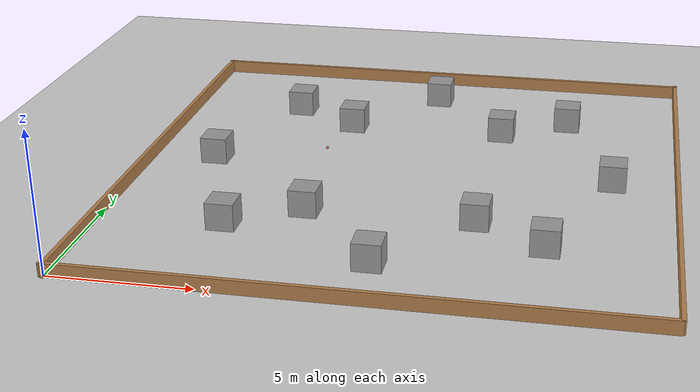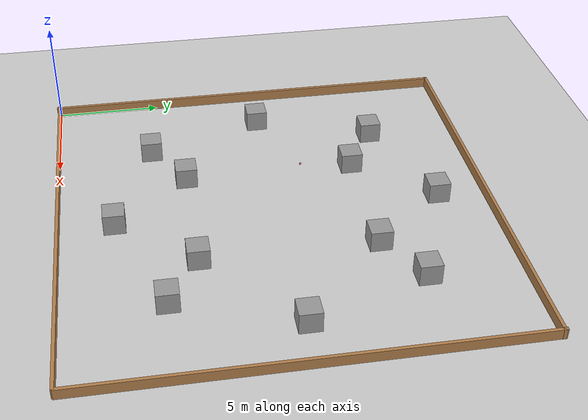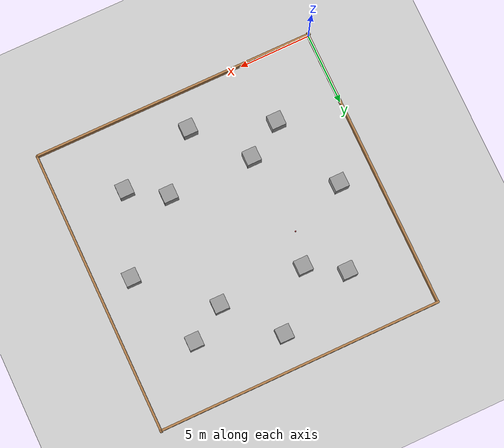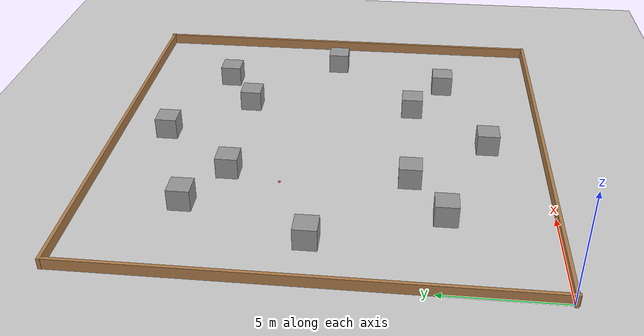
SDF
<sdf version="1.6">
 <world name="default">
  <light name="sun" type="directional">
   <pose>0 0 10 0 -0 0</pose>
   <diffuse>0.8 0.8 0.8 1</diffuse>
   <specular>0.1 0.1 0.1 1</specular>
   <attenuation>
    <range>1000</range>
    <constant>0.9</constant>
    <linear>0.01</linear>
    <quadratic>0.001</quadratic>
   </attenuation>
   <direction>-0.5 0.5 -1</direction>
  </light>
  <model name="ground_plane">
   <static>1</static>
   <link name="link">
    <collision name="collision">
     <geometry><plane><normal>0 0 1</normal><size>200 200</size></plane></geometry>
     <surface><friction><ode><mu>100</mu><mu2>50</mu2></ode></friction></surface>
    </collision>
    <visual name="visual">
     <cast_shadows>0</cast_shadows>
     <geometry><plane><normal>0 0 1</normal><size>200 200</size></plane></geometry>
     <material>
      <script><uri>file://media/materials/scripts/gazebo.material</uri><name>Gazebo/Grey</name></script>
     </material>
    </visual>
   </link>
  </model>
  <physics name="default_physics" default="0" type="ode">
   <real_time_update_rate>0</real_time_update_rate>
   <max_step_size>0.001</max_step_size>
   <real_time_factor>1000</real_time_factor>
   <ode>
    <solver>
     <type>quick</type>
     <iters>150</iters>
     <precon_iters>0</precon_iters>
     <sor>1.4</sor>
     <use_dynamic_moi_rescaling>1</use_dynamic_moi_rescaling>
    </solver>
    <constraints>
     <cfm>1e-05</cfm>
     <erp>0.2</erp>
     <contact_max_correcting_vel>2000</contact_max_correcting_vel>
     <contact_surface_layer>0.01</contact_surface_layer>
    </constraints>
   </ode>
  </physics>
  <scene><ambient>0.4 0.4 0.4 1</ambient><background>0.7 0.7 0.7 1</background><shadows>1</shadows></scene>
  <gravity>0 0 -9.8</gravity>
  <magnetic_field>6e-06 2.3e-05 -4.2e-05</magnetic_field>
  <atmosphere type="adiabatic"/>
  <spherical_coordinates>
   <surface_model>EARTH_WGS84</surface_model>
   <latitude_deg>0</latitude_deg>
   <longitude_deg>0</longitude_deg>
   <elevation>0</elevation>
   <heading_deg>0</heading_deg>
  </spherical_coordinates>
  <model name="unit_sphere_3_0_0_0">
   <link name="link">
    <inertial>
     <mass>1</mass>
     <inertia><ixx>0.1</ixx><ixy>0</ixy><ixz>0</ixz><iyy>0.1</iyy><iyz>0</iyz><izz>0.1</izz></inertia>
    </inertial>
    <visual name="visual">
     <geometry><sphere><radius>0.05</radius></sphere></geometry>
     <material>
      <script><name>Gazebo/Grey</name><uri>file://media/materials/scripts/gazebo.material</uri></script>
      <ambient>0.9 0.3 0.3 1</ambient>
      <diffuse>0.7 0.7 0.7 1</diffuse>
      <specular>0.01 0.01 0.01 1</specular>
      <emissive>0 0 0 1</emissive>
      <shader type="vertex"><normal_map>__default__</normal_map></shader>
     </material>
    </visual>
    <collision name="collision">
     <geometry><sphere><radius>0.05</radius></sphere></geometry>
     <surface>
      <friction>
       <ode><mu>1</mu><mu2>1</mu2><fdir1>0 0 0</fdir1><slip1>0</slip1><slip2>0</slip2></ode>
       <torsional>
        <coefficient>1</coefficient>
        <patch_radius>0</patch_radius>
        <surface_radius>0</surface_radius>
        <use_patch_radius>1</use_patch_radius>
        <ode><slip>0</slip></ode>
       </torsional>
      </friction>
      <bounce><restitution_coefficient>0</restitution_coefficient><threshold>1e+06</threshold></bounce>
      <contact>
       <collide_without_contact>0</collide_without_contact>
       <collide_without_contact_bitmask>1</collide_without_contact_bitmask>
       <collide_bitmask>1</collide_bitmask>
       <ode>
        <soft_cfm>0</soft_cfm>
        <soft_erp>0.2</soft_erp>
        <kp>1e+13</kp>
        <kd>1</kd>
        <max_vel>0.01</max_vel>
        <min_depth>0</min_depth>
       </ode>
       <bullet>
        <split_impulse>1</split_impulse>
        <split_impulse_penetration_threshold>-0.01</split_impulse_penetration_threshold>
        <soft_cfm>0</soft_cfm>
        <soft_erp>0.2</soft_erp>
        <kp>1e+13</kp>
        <kd>1</kd>
       </bullet>
      </contact>
     </surface>
    </collision>
   </link>
   <static>0</static>
   <pose>6.42035 11.6553 0.05 -3.04754 -1.19068 2.42402</pose>
  </model>
  <model name="unit_box_12">
   <pose>17.5 10 0.5 0 -0 3.14159</pose>
   <link name="link">
    <inertial>
     <mass>1</mass>
     <inertia>
      <ixx>0.166667</ixx>
      <ixy>0</ixy>
      <ixz>0</ixz>
      <iyy>0.166667</iyy>
      <iyz>0</iyz>
      <izz>0.166667</izz>
     </inertia>
    </inertial>
    <collision name="collision"><geometry><box><size>1 1 1</size></box></geometry></collision>
    <visual name="visual">
     <geometry><box><size>1 1 1</size></box></geometry>
     <material>
      <script><name>Gazebo/Grey</name><uri>file://media/materials/scripts/gazebo.material</uri></script>
     </material>
    </visual>
   </link>
  </model>
  <model name="unit_box_13">
   <pose>2.5 10 0.5 0 -0 3.14159</pose>
   <link name="link">
    <inertial>
     <mass>1</mass>
     <inertia>
      <ixx>0.166667</ixx>
      <ixy>0</ixy>
      <ixz>0</ixz>
      <iyy>0.166667</iyy>
      <iyz>0</iyz>
      <izz>0.166667</izz>
     </inertia>
    </inertial>
    <collision name="collision"><geometry><box><size>1 1 1</size></box></geometry></collision>
    <visual name="visual">
     <geometry><box><size>1 1 1</size></box></geometry>
     <material>
      <script><name>Gazebo/Grey</name><uri>file://media/materials/scripts/gazebo.material</uri></script>
     </material>
    </visual>
   </link>
  </model>
  <model name="unit_box_14">
   <pose>10 17.5 0.5 0 -0 3.14159</pose>
   <link name="link">
    <inertial>
     <mass>1</mass>
     <inertia>
      <ixx>0.166667</ixx>
      <ixy>0</ixy>
      <ixz>0</ixz>
      <iyy>0.166667</iyy>
      <iyz>0</iyz>
      <izz>0.166667</izz>
     </inertia>
    </inertial>
    <collision name="collision"><geometry><box><size>1 1 1</size></box></geometry></collision>
    <visual name="visual">
     <geometry><box><size>1 1 1</size></box></geometry>
     <material>
      <script><name>Gazebo/Grey</name><uri>file://media/materials/scripts/gazebo.material</uri></script>
     </material>
    </visual>
   </link>
  </model>
  <model name="unit_box_15">
   <pose>10 2.5 0.5 0 -0 3.14159</pose>
   <link name="link">
    <inertial>
     <mass>1</mass>
     <inertia>
      <ixx>0.166667</ixx>
      <ixy>0</ixy>
      <ixz>0</ixz>
      <iyy>0.166667</iyy>
      <iyz>0</iyz>
      <izz>0.166667</izz>
     </inertia>
    </inertial>
    <collision name="collision"><geometry><box><size>1 1 1</size></box></geometry></collision>
    <visual name="visual">
     <geometry><box><size>1 1 1</size></box></geometry>
     <material>
      <script><name>Gazebo/Grey</name><uri>file://media/materials/scripts/gazebo.material</uri></script>
     </material>
    </visual>
   </link>
  </model>
  <model name="unit_box_16">
   <pose>15.5 15.5 0.5 0 -0 3.14159</pose>
   <link name="link">
    <inertial>
     <mass>1</mass>
     <inertia>
      <ixx>0.166667</ixx>
      <ixy>0</ixy>
      <ixz>0</ixz>
      <iyy>0.166667</iyy>
      <iyz>0</iyz>
      <izz>0.166667</izz>
     </inertia>
    </inertial>
    <collision name="collision"><geometry><box><size>1 1 1</size></box></geometry></collision>
    <visual name="visual">
     <geometry><box><size>1 1 1</size></box></geometry>
     <material>
      <script><name>Gazebo/Grey</name><uri>file://media/materials/scripts/gazebo.material</uri></script>
     </material>
    </visual>
   </link>
  </model>
  <model name="unit_box_17">
   <pose>4.5 15.5 0.5 0 -0 3.14159</pose>
   <link name="link">
    <inertial>
     <mass>1</mass>
     <inertia>
      <ixx>0.166667</ixx>
      <ixy>0</ixy>
      <ixz>0</ixz>
      <iyy>0.166667</iyy>
      <iyz>0</iyz>
      <izz>0.166667</izz>
     </inertia>
    </inertial>
    <collision name="collision"><geometry><box><size>1 1 1</size></box></geometry></collision>
    <visual name="visual">
     <geometry><box><size>1 1 1</size></box></geometry>
     <material>
      <script><name>Gazebo/Grey</name><uri>file://media/materials/scripts/gazebo.material</uri></script>
     </material>
    </visual>
   </link>
  </model>
  <model name="unit_box_18">
   <pose>15.5 4.5 0.5 0 -0 3.14159</pose>
   <link name="link">
    <inertial>
     <mass>1</mass>
     <inertia>
      <ixx>0.166667</ixx>
      <ixy>0</ixy>
      <ixz>0</ixz>
      <iyy>0.166667</iyy>
      <iyz>0</iyz>
      <izz>0.166667</izz>
     </inertia>
    </inertial>
    <collision name="collision"><geometry><box><size>1 1 1</size></box></geometry></collision>
    <visual name="visual">
     <geometry><box><size>1 1 1</size></box></geometry>
     <material>
      <script><name>Gazebo/Grey</name><uri>file://media/materials/scripts/gazebo.material</uri></script>
     </material>
    </visual>
   </link>
  </model>
  <model name="unit_box_19">
   <pose>4.5 4.5 0.5 0 -0 3.14159</pose>
   <link name="link">
    <inertial>
     <mass>1</mass>
     <inertia>
      <ixx>0.166667</ixx>
      <ixy>0</ixy>
      <ixz>0</ixz>
      <iyy>0.166667</iyy>
      <iyz>0</iyz>
      <izz>0.166667</izz>
     </inertia>
    </inertial>
    <collision name="collision"><geometry><box><size>1 1 1</size></box></geometry></collision>
    <visual name="visual">
     <geometry><box><size>1 1 1</size></box></geometry>
     <material>
      <script><name>Gazebo/Grey</name><uri>file://media/materials/scripts/gazebo.material</uri></script>
     </material>
    </visual>
   </link>
  </model>
  <model name="unit_box_20">
   <pose>13 6 0.5 0 -0 3.14159</pose>
   <link name="link">
    <inertial>
     <mass>1</mass>
     <inertia>
      <ixx>0.166667</ixx>
      <ixy>0</ixy>
      <ixz>0</ixz>
      <iyy>0.166667</iyy>
      <iyz>0</iyz>
      <izz>0.166667</izz>
     </inertia>
    </inertial>
    <collision name="collision"><geometry><box><size>1 1 1</size></box></geometry></collision>
    <visual name="visual">
     <geometry><box><size>1 1 1</size></box></geometry>
     <material>
      <script><name>Gazebo/Grey</name><uri>file://media/materials/scripts/gazebo.material</uri></script>
     </material>
    </visual>
   </link>
  </model>
  <model name="unit_box_21">
   <pose>7 6 0.5 0 -0 3.14159</pose>
   <link name="link">
    <inertial>
     <mass>1</mass>
     <inertia>
      <ixx>0.166667</ixx>
      <ixy>0</ixy>
      <ixz>0</ixz>
      <iyy>0.166667</iyy>
      <iyz>0</iyz>
      <izz>0.166667</izz>
     </inertia>
    </inertial>
    <collision name="collision"><geometry><box><size>1 1 1</size></box></geometry></collision>
    <visual name="visual">
     <geometry><box><size>1 1 1</size></box></geometry>
     <material>
      <script><name>Gazebo/Grey</name><uri>file://media/materials/scripts/gazebo.material</uri></script>
     </material>
    </visual>
   </link>
  </model>
  <model name="unit_box_22">
   <pose>7 14 0.5 0 -0 3.14159</pose>
   <link name="link">
    <inertial>
     <mass>1</mass>
     <inertia>
      <ixx>0.166667</ixx>
      <ixy>0</ixy>
      <ixz>0</ixz>
      <iyy>0.166667</iyy>
      <iyz>0</iyz>
      <izz>0.166667</izz>
     </inertia>
    </inertial>
    <collision name="collision"><geometry><box><size>1 1 1</size></box></geometry></collision>
    <visual name="visual">
     <geometry><box><size>1 1 1</size></box></geometry>
     <material>
      <script><name>Gazebo/Grey</name><uri>file://media/materials/scripts/gazebo.material</uri></script>
     </material>
    </visual>
   </link>
  </model>
  <model name="unit_box_23">
   <pose>13 14 0.5 0 -0 3.14159</pose>
   <link name="link">
    <inertial>
     <mass>1</mass>
     <inertia>
      <ixx>0.166667</ixx>
      <ixy>0</ixy>
      <ixz>0</ixz>
      <iyy>0.166667</iyy>
      <iyz>0</iyz>
      <izz>0.166667</izz>
     </inertia>
    </inertial>
    <collision name="collision"><geometry><box><size>1 1 1</size></box></geometry></collision>
    <visual name="visual">
     <geometry><box><size>1 1 1</size></box></geometry>
     <material>
      <script><name>Gazebo/Grey</name><uri>file://media/materials/scripts/gazebo.material</uri></script>
     </material>
    </visual>
   </link>
  </model>
  <model name="turtlebot3_square_1_0_clone_0">
   <link name="Wall_0">
    <pose>0.430995 10.1264 0 0 -0 0</pose>
    <inertial>
     <mass>1</mass>
     <inertia><ixx>1</ixx><ixy>0</ixy><ixz>0</ixz><iyy>1</iyy><iyz>0</iyz><izz>1</izz></inertia>
    </inertial>
    <visual name="Wall_0_Visual">
     <pose>0 0 0.25 0 -0 0</pose>
     <geometry><box><size>20 0.15 0.5</size></box></geometry>
     <material>
      <script><uri>file://media/materials/scripts/gazebo.material</uri><name>Gazebo/Wood</name></script>
      <ambient>1 1 1 1</ambient>
      <diffuse>1 1 1 1</diffuse>
      <specular>0.2 0.2 0.2 1</specular>
      <emissive>0 0 0 1</emissive>
      <shader type="vertex"><normal_map>__default__</normal_map></shader>
     </material>
    </visual>
    <collision name="Wall_0_Collision">
     <pose>0 0 0.25 0 -0 0</pose>
     <geometry><box><size>20 0.15 0.5</size></box></geometry>
     <surface>
      <friction>
       <ode><mu>1</mu><mu2>1</mu2><fdir1>0 0 0</fdir1><slip1>0</slip1><slip2>0</slip2></ode>
       <torsional>
        <coefficient>1</coefficient>
        <patch_radius>0</patch_radius>
        <surface_radius>0</surface_radius>
        <use_patch_radius>1</use_patch_radius>
        <ode><slip>0</slip></ode>
       </torsional>
      </friction>
      <bounce><restitution_coefficient>0</restitution_coefficient><threshold>1e+06</threshold></bounce>
      <contact>
       <collide_without_contact>0</collide_without_contact>
       <collide_without_contact_bitmask>1</collide_without_contact_bitmask>
       <collide_bitmask>1</collide_bitmask>
       <ode>
        <soft_cfm>0</soft_cfm>
        <soft_erp>0.2</soft_erp>
        <kp>1e+13</kp>
        <kd>1</kd>
        <max_vel>0.01</max_vel>
        <min_depth>0</min_depth>
       </ode>
       <bullet>
        <split_impulse>1</split_impulse>
        <split_impulse_penetration_threshold>-0.01</split_impulse_penetration_threshold>
        <soft_cfm>0</soft_cfm>
        <soft_erp>0.2</soft_erp>
        <kp>1e+13</kp>
        <kd>1</kd>
       </bullet>
      </contact>
     </surface>
    </collision>
   </link>
   <link name="Wall_2">
    <pose>-9.47815 0.146707 0 0 0 -1.5708</pose>
    <inertial>
     <mass>1</mass>
     <inertia><ixx>1</ixx><ixy>0</ixy><ixz>0</ixz><iyy>1</iyy><iyz>0</iyz><izz>1</izz></inertia>
    </inertial>
    <visual name="Wall_2_Visual">
     <pose>0 0 0.25 0 -0 0</pose>
     <geometry><box><size>20 0.15 0.5</size></box></geometry>
     <material>
      <script><uri>file://media/materials/scripts/gazebo.material</uri><name>Gazebo/Wood</name></script>
      <ambient>1 1 1 1</ambient>
      <diffuse>1 1 1 1</diffuse>
      <specular>0.2 0.2 0.2 1</specular>
      <emissive>0 0 0 1</emissive>
      <shader type="vertex"><normal_map>__default__</normal_map></shader>
     </material>
    </visual>
    <collision name="Wall_2_Collision">
     <pose>0 0 0.25 0 -0 0</pose>
     <geometry><box><size>20 0.15 0.5</size></box></geometry>
     <surface>
      <friction>
       <ode><mu>1</mu><mu2>1</mu2><fdir1>0 0 0</fdir1><slip1>0</slip1><slip2>0</slip2></ode>
       <torsional>
        <coefficient>1</coefficient>
        <patch_radius>0</patch_radius>
        <surface_radius>0</surface_radius>
        <use_patch_radius>1</use_patch_radius>
        <ode><slip>0</slip></ode>
       </torsional>
      </friction>
      <bounce><restitution_coefficient>0</restitution_coefficient><threshold>1e+06</threshold></bounce>
      <contact>
       <collide_without_contact>0</collide_without_contact>
       <collide_without_contact_bitmask>1</collide_without_contact_bitmask>
       <collide_bitmask>1</collide_bitmask>
       <ode>
        <soft_cfm>0</soft_cfm>
        <soft_erp>0.2</soft_erp>
        <kp>1e+13</kp>
        <kd>1</kd>
        <max_vel>0.01</max_vel>
        <min_depth>0</min_depth>
       </ode>
       <bullet>
        <split_impulse>1</split_impulse>
        <split_impulse_penetration_threshold>-0.01</split_impulse_penetration_threshold>
        <soft_cfm>0</soft_cfm>
        <soft_erp>0.2</soft_erp>
        <kp>1e+13</kp>
        <kd>1</kd>
       </bullet>
      </contact>
     </surface>
    </collision>
   </link>
   <link name="Wall_3">
    <pose>0.364002 -9.72811 0 0 -0 0</pose>
    <inertial>
     <mass>1</mass>
     <inertia><ixx>1</ixx><ixy>0</ixy><ixz>0</ixz><iyy>1</iyy><iyz>0</iyz><izz>1</izz></inertia>
    </inertial>
    <visual name="Wall_3_Visual">
     <pose>0 0 0.25 0 -0 0</pose>
     <geometry><box><size>20 0.15 0.5</size></box></geometry>
     <material>
      <script><uri>file://media/materials/scripts/gazebo.material</uri><name>Gazebo/Wood</name></script>
      <ambient>1 1 1 1</ambient>
      <diffuse>1 1 1 1</diffuse>
      <specular>0.2 0.2 0.2 1</specular>
      <emissive>0 0 0 1</emissive>
      <shader type="vertex"><normal_map>__default__</normal_map></shader>
     </material>
    </visual>
    <collision name="Wall_3_Collision">
     <pose>0 0 0.25 0 -0 0</pose>
     <geometry><box><size>20 0.15 0.5</size></box></geometry>
     <surface>
      <friction>
       <ode><mu>1</mu><mu2>1</mu2><fdir1>0 0 0</fdir1><slip1>0</slip1><slip2>0</slip2></ode>
       <torsional>
        <coefficient>1</coefficient>
        <patch_radius>0</patch_radius>
        <surface_radius>0</surface_radius>
        <use_patch_radius>1</use_patch_radius>
        <ode><slip>0</slip></ode>
       </torsional>
      </friction>
      <bounce><restitution_coefficient>0</restitution_coefficient><threshold>1e+06</threshold></bounce>
      <contact>
       <collide_without_contact>0</collide_without_contact>
       <collide_without_contact_bitmask>1</collide_without_contact_bitmask>
       <collide_bitmask>1</collide_bitmask>
       <ode>
        <soft_cfm>0</soft_cfm>
        <soft_erp>0.2</soft_erp>
        <kp>1e+13</kp>
        <kd>1</kd>
        <max_vel>0.01</max_vel>
        <min_depth>0</min_depth>
       </ode>
       <bullet>
        <split_impulse>1</split_impulse>
        <split_impulse_penetration_threshold>-0.01</split_impulse_penetration_threshold>
        <soft_cfm>0</soft_cfm>
        <soft_erp>0.2</soft_erp>
        <kp>1e+13</kp>
        <kd>1</kd>
       </bullet>
      </contact>
     </surface>
    </collision>
   </link>
   <link name="Wall_4">
    <pose>10.344 0.250071 0 0 -0 1.5708</pose>
    <inertial>
     <mass>1</mass>
     <inertia><ixx>1</ixx><ixy>0</ixy><ixz>0</ixz><iyy>1</iyy><iyz>0</iyz><izz>1</izz></inertia>
    </inertial>
    <visual name="Wall_4_Visual">
     <pose>0 0 0.25 0 -0 0</pose>
     <geometry><box><size>20 0.15 0.5</size></box></geometry>
     <material>
      <script><uri>file://media/materials/scripts/gazebo.material</uri><name>Gazebo/Wood</name></script>
      <ambient>1 1 1 1</ambient>
      <diffuse>1 1 1 1</diffuse>
      <specular>0.2 0.2 0.2 1</specular>
      <emissive>0 0 0 1</emissive>
      <shader type="vertex"><normal_map>__default__</normal_map></shader>
     </material>
    </visual>
    <collision name="Wall_4_Collision">
     <pose>0 0 0.25 0 -0 0</pose>
     <geometry><box><size>20 0.15 0.5</size></box></geometry>
     <surface>
      <friction>
       <ode><mu>1</mu><mu2>1</mu2><fdir1>0 0 0</fdir1><slip1>0</slip1><slip2>0</slip2></ode>
       <torsional>
        <coefficient>1</coefficient>
        <patch_radius>0</patch_radius>
        <surface_radius>0</surface_radius>
        <use_patch_radius>1</use_patch_radius>
        <ode><slip>0</slip></ode>
       </torsional>
      </friction>
      <bounce><restitution_coefficient>0</restitution_coefficient><threshold>1e+06</threshold></bounce>
      <contact>
       <collide_without_contact>0</collide_without_contact>
       <collide_without_contact_bitmask>1</collide_without_contact_bitmask>
       <collide_bitmask>1</collide_bitmask>
       <ode>
        <soft_cfm>0</soft_cfm>
        <soft_erp>0.2</soft_erp>
        <kp>1e+13</kp>
        <kd>1</kd>
        <max_vel>0.01</max_vel>
        <min_depth>0</min_depth>
       </ode>
       <bullet>
        <split_impulse>1</split_impulse>
        <split_impulse_penetration_threshold>-0.01</split_impulse_penetration_threshold>
        <soft_cfm>0</soft_cfm>
        <soft_erp>0.2</soft_erp>
        <kp>1e+13</kp>
        <kd>1</kd>
       </bullet>
      </contact>
     </surface>
    </collision>
   </link>
   <static>1</static>
   <pose>9.49994 9.6845 0 0 -0 0</pose>
  </model>
 </world>
</sdf>
